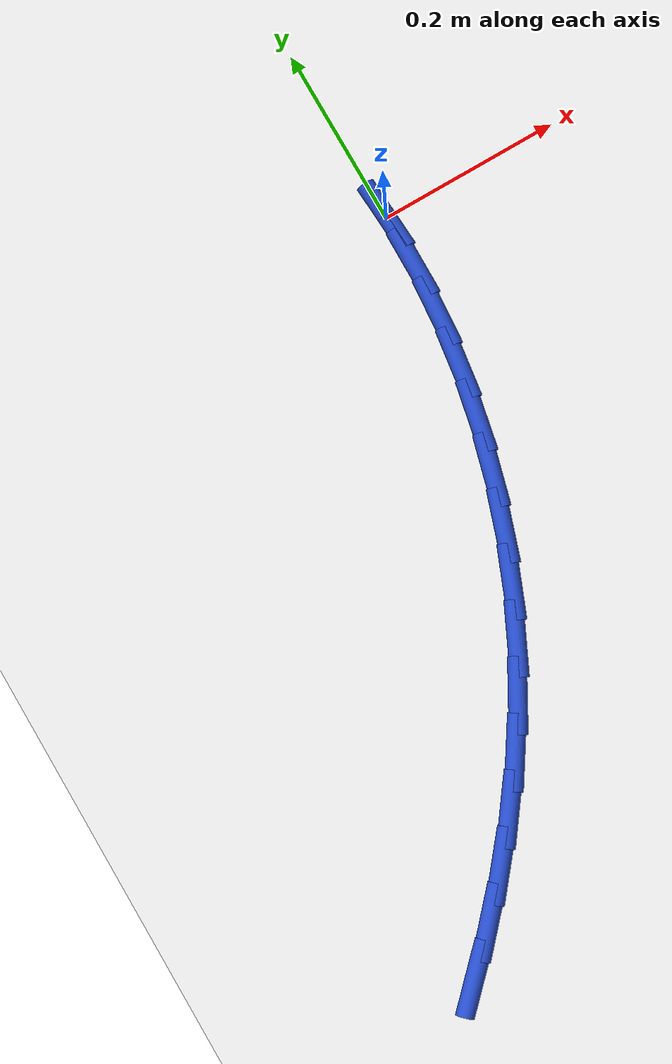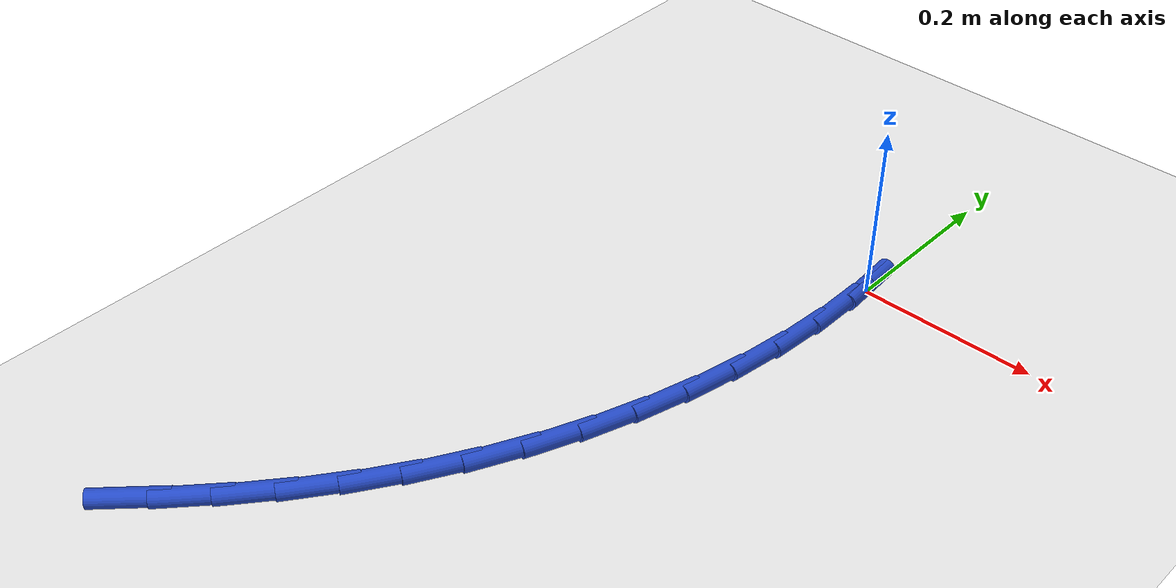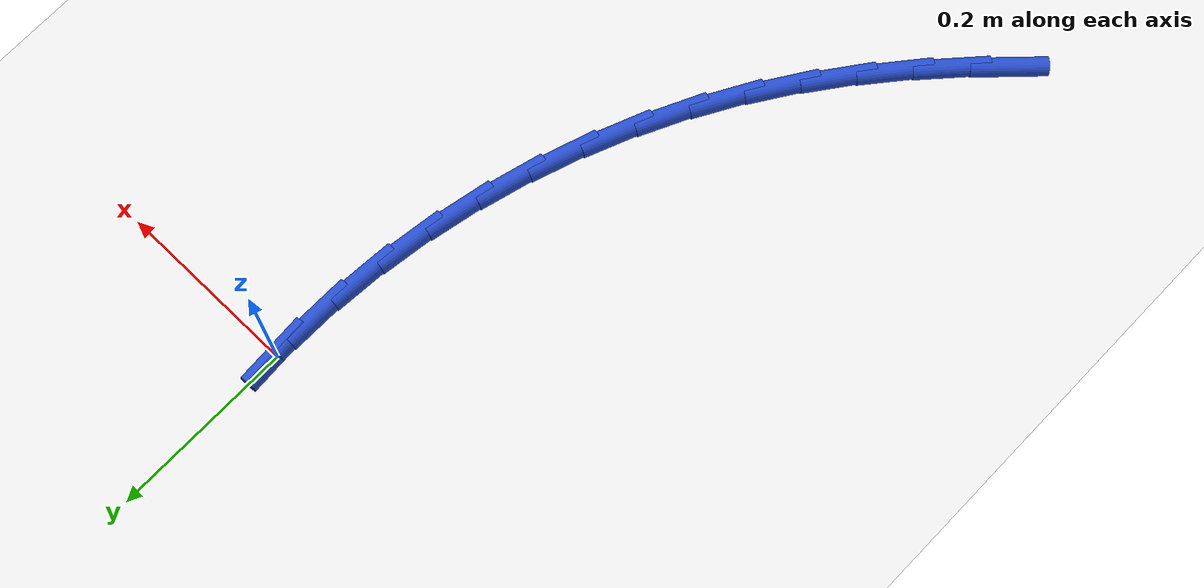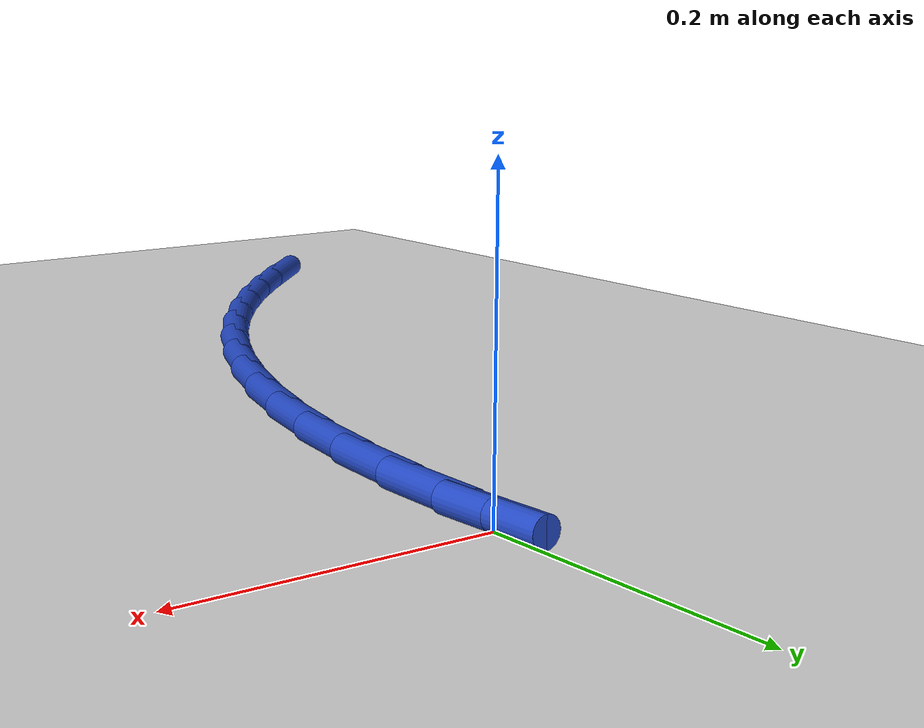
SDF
<sdf version="1.6">
 <world name="default">
  <model name="ground_plane">
   <static>1</static>
   <link name="link">
    <collision name="collision">
     <geometry><plane><normal>0 0 1</normal><size>100 100</size></plane></geometry>
     <surface><friction><ode><mu>100</mu><mu2>50</mu2></ode></friction></surface>
    </collision>
    <visual name="visual">
     <cast_shadows>0</cast_shadows>
     <geometry><plane><normal>0 0 1</normal><size>100 100</size></plane></geometry>
     <material>
      <script><uri>file://media/materials/scripts/gazebo.material</uri><name>Gazebo/WhiteGlow</name></script>
     </material>
    </visual>
   </link>
  </model>
  <model name="line">
   <link name="link_0">
    <pose>-1.3877787807814457e-17 -2.7755575615628914e-17 0.01 0 1.57 -1.5133622084081786</pose>
    <collision name="collision">
     <geometry><cylinder><radius>0.01</radius><length>0.08</length></cylinder></geometry>
    </collision>
    <visual name="visual">
     <material>
      <script><name>Gazebo/Blue</name><uri>file://media/materials/scripts/gazebo.material</uri></script>
     </material>
     <geometry><cylinder><radius>0.01</radius><length>0.08</length></cylinder></geometry>
    </visual>
   </link>
   <link name="link_116">
    <pose>-0.31596183813196677 -0.7226233791721557 0.01 0 1.57 0.7869077420892151</pose>
    <collision name="collision">
     <geometry><cylinder><radius>0.01</radius><length>0.08</length></cylinder></geometry>
    </collision>
    <visual name="visual">
     <material>
      <script><name>Gazebo/Blue</name><uri>file://media/materials/scripts/gazebo.material</uri></script>
     </material>
     <geometry><cylinder><radius>0.01</radius><length>0.08</length></cylinder></geometry>
    </visual>
   </link>
   <link name="link_117">
    <pose>-0.27505875553835246 -0.6815966169366193 0.01 0 1.57 0.8335301565554101</pose>
    <collision name="collision">
     <geometry><cylinder><radius>0.01</radius><length>0.08</length></cylinder></geometry>
    </collision>
    <visual name="visual">
     <material>
      <script><name>Gazebo/Blue</name><uri>file://media/materials/scripts/gazebo.material</uri></script>
     </material>
     <geometry><cylinder><radius>0.01</radius><length>0.08</length></cylinder></geometry>
    </visual>
   </link>
   <link name="link_118">
    <pose>-0.23620284068757347 -0.6388079480834589 0.01 0 1.57 0.8842659094585951</pose>
    <collision name="collision">
     <geometry><cylinder><radius>0.01</radius><length>0.08</length></cylinder></geometry>
    </collision>
    <visual name="visual">
     <material>
      <script><name>Gazebo/Blue</name><uri>file://media/materials/scripts/gazebo.material</uri></script>
     </material>
     <geometry><cylinder><radius>0.01</radius><length>0.08</length></cylinder></geometry>
    </visual>
   </link>
   <link name="link_119">
    <pose>-0.19962378241097392 -0.594173198923271 0.01 0 1.57 0.9390978690674692</pose>
    <collision name="collision">
     <geometry><cylinder><radius>0.01</radius><length>0.08</length></cylinder></geometry>
    </collision>
    <visual name="visual">
     <material>
      <script><name>Gazebo/Blue</name><uri>file://media/materials/scripts/gazebo.material</uri></script>
     </material>
     <geometry><cylinder><radius>0.01</radius><length>0.08</length></cylinder></geometry>
    </visual>
   </link>
   <link name="link_120">
    <pose>-0.16555126953989624 -0.5476081957666501 0.01 0 1.57 0.9979070724120171</pose>
    <collision name="collision">
     <geometry><cylinder><radius>0.01</radius><length>0.08</length></cylinder></geometry>
    </collision>
    <visual name="visual">
     <material>
      <script><name>Gazebo/Blue</name><uri>file://media/materials/scripts/gazebo.material</uri></script>
     </material>
     <geometry><cylinder><radius>0.01</radius><length>0.08</length></cylinder></geometry>
    </visual>
   </link>
   <link name="link_121">
    <pose>-0.13421499090568328 -0.49902876492419185 0.01 0 1.57 1.0604170460385764</pose>
    <collision name="collision">
     <geometry><cylinder><radius>0.01</radius><length>0.08</length></cylinder></geometry>
    </collision>
    <visual name="visual">
     <material>
      <script><name>Gazebo/Blue</name><uri>file://media/materials/scripts/gazebo.material</uri></script>
     </material>
     <geometry><cylinder><radius>0.01</radius><length>0.08</length></cylinder></geometry>
    </visual>
   </link>
   <link name="link_122">
    <pose>-0.10584389361763778 -0.4483531302030861 0.01 0 1.57 1.1242955860575174</pose>
    <collision name="collision">
     <geometry><cylinder><radius>0.01</radius><length>0.08</length></cylinder></geometry>
    </collision>
    <visual name="visual">
     <material>
      <script><name>Gazebo/Blue</name><uri>file://media/materials/scripts/gazebo.material</uri></script>
     </material>
     <geometry><cylinder><radius>0.01</radius><length>0.08</length></cylinder></geometry>
    </visual>
   </link>
   <link name="link_123">
    <pose>-0.08061726112165908 -0.39566004517429204 0.01 0 1.57 1.1865879632515153</pose>
    <collision name="collision">
     <geometry><cylinder><radius>0.01</radius><length>0.08</length></cylinder></geometry>
    </collision>
    <visual name="visual">
     <material>
      <script><name>Gazebo/Blue</name><uri>file://media/materials/scripts/gazebo.material</uri></script>
     </material>
     <geometry><cylinder><radius>0.01</radius><length>0.08</length></cylinder></geometry>
    </visual>
   </link>
   <link name="link_124">
    <pose>-0.058634274557561664 -0.341287181164574 0.01 0 1.57 1.2476953148583516</pose>
    <collision name="collision">
     <geometry><cylinder><radius>0.01</radius><length>0.08</length></cylinder></geometry>
    </collision>
    <visual name="visual">
     <material>
      <script><name>Gazebo/Blue</name><uri>file://media/materials/scripts/gazebo.material</uri></script>
     </material>
     <geometry><cylinder><radius>0.01</radius><length>0.08</length></cylinder></geometry>
    </visual>
   </link>
   <link name="link_125">
    <pose>-0.039986846072800945 -0.2855957053434519 0.01 0 1.57 1.3083230098221246</pose>
    <collision name="collision">
     <geometry><cylinder><radius>0.01</radius><length>0.08</length></cylinder></geometry>
    </collision>
    <visual name="visual">
     <material>
      <script><name>Gazebo/Blue</name><uri>file://media/materials/scripts/gazebo.material</uri></script>
     </material>
     <geometry><cylinder><radius>0.01</radius><length>0.08</length></cylinder></geometry>
    </visual>
   </link>
   <link name="link_126">
    <pose>-0.02476688781483249 -0.22894678488044543 0.01 0 1.57 1.3691793440918516</pose>
    <collision name="collision">
     <geometry><cylinder><radius>0.01</radius><length>0.08</length></cylinder></geometry>
    </collision>
    <visual name="visual">
     <material>
      <script><name>Gazebo/Blue</name><uri>file://media/materials/scripts/gazebo.material</uri></script>
     </material>
     <geometry><cylinder><radius>0.01</radius><length>0.08</length></cylinder></geometry>
    </visual>
   </link>
   <link name="link_127">
    <pose>-0.013066311931112554 -0.171701586945077 0.01 0 1.57 1.430983166616796</pose>
    <collision name="collision">
     <geometry><cylinder><radius>0.01</radius><length>0.08</length></cylinder></geometry>
    </collision>
    <visual name="visual">
     <material>
      <script><name>Gazebo/Blue</name><uri>file://media/materials/scripts/gazebo.material</uri></script>
     </material>
     <geometry><cylinder><radius>0.01</radius><length>0.08</length></cylinder></geometry>
    </visual>
   </link>
   <link name="link_128">
    <pose>-0.004977030569096643 -0.11422127870686617 0.01 0 1.57 1.4944714811415922</pose>
    <collision name="collision">
     <geometry><cylinder><radius>0.01</radius><length>0.08</length></cylinder></geometry>
    </collision>
    <visual name="visual">
     <material>
      <script><name>Gazebo/Blue</name><uri>file://media/materials/scripts/gazebo.material</uri></script>
     </material>
     <geometry><cylinder><radius>0.01</radius><length>0.08</length></cylinder></geometry>
    </visual>
   </link>
   <link name="link_129">
    <pose>-0.0005909558762405426 -0.0568670273353337 0.01 0 1.57 1.5604048111381656</pose>
    <collision name="collision">
     <geometry><cylinder><radius>0.01</radius><length>0.08</length></cylinder></geometry>
    </collision>
    <visual name="visual">
     <material>
      <script><name>Gazebo/Blue</name><uri>file://media/materials/scripts/gazebo.material</uri></script>
     </material>
     <geometry><cylinder><radius>0.01</radius><length>0.08</length></cylinder></geometry>
    </visual>
   </link>
   <link name="link_130">
    <pose>-2.42861286636753e-17 -8.326672684688674e-17 0.01 0 1.57 -1.512025183687755</pose>
    <collision name="collision">
     <geometry><cylinder><radius>0.01</radius><length>0.08</length></cylinder></geometry>
    </collision>
    <visual name="visual">
     <material>
      <script><name>Gazebo/Blue</name><uri>file://media/materials/scripts/gazebo.material</uri></script>
     </material>
     <geometry><cylinder><radius>0.01</radius><length>0.08</length></cylinder></geometry>
    </visual>
   </link>
  </model>
 </world>
</sdf>
